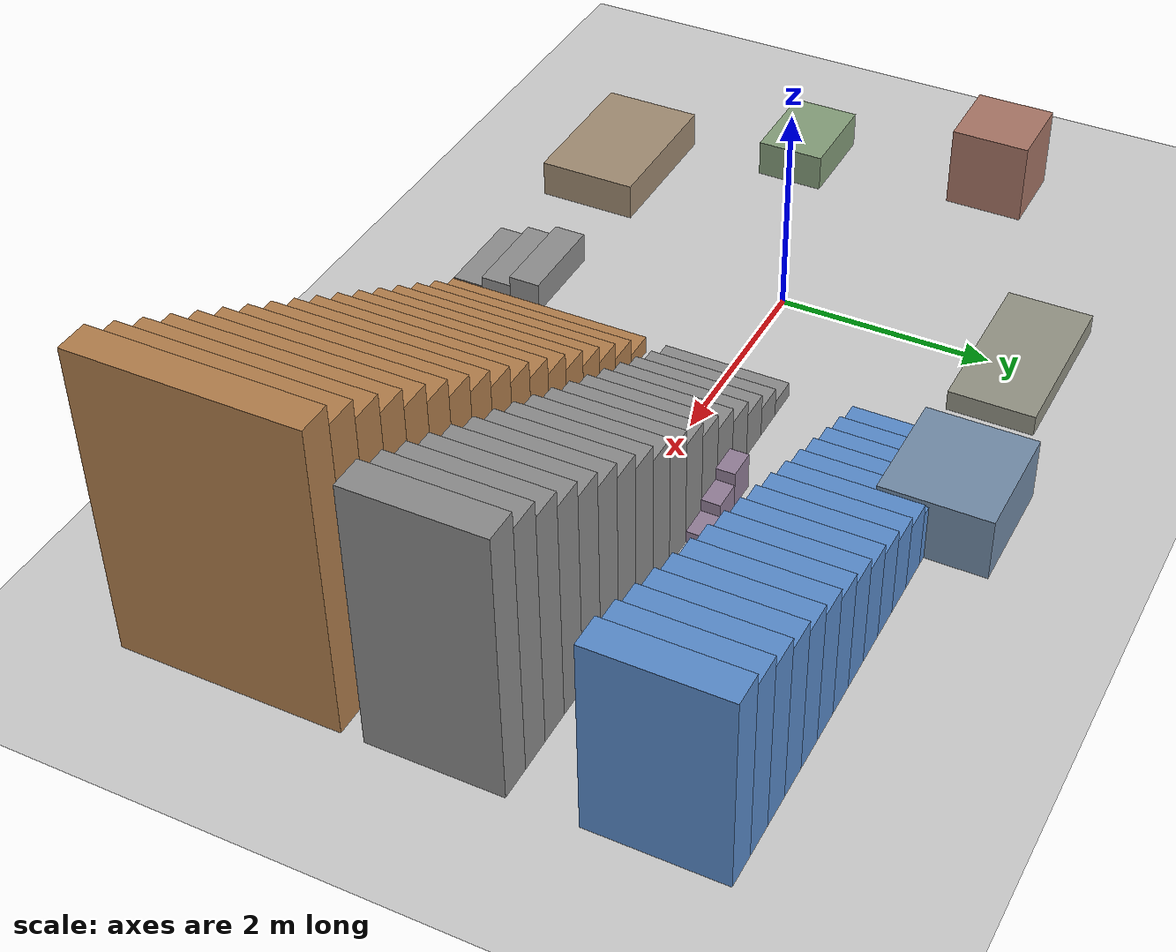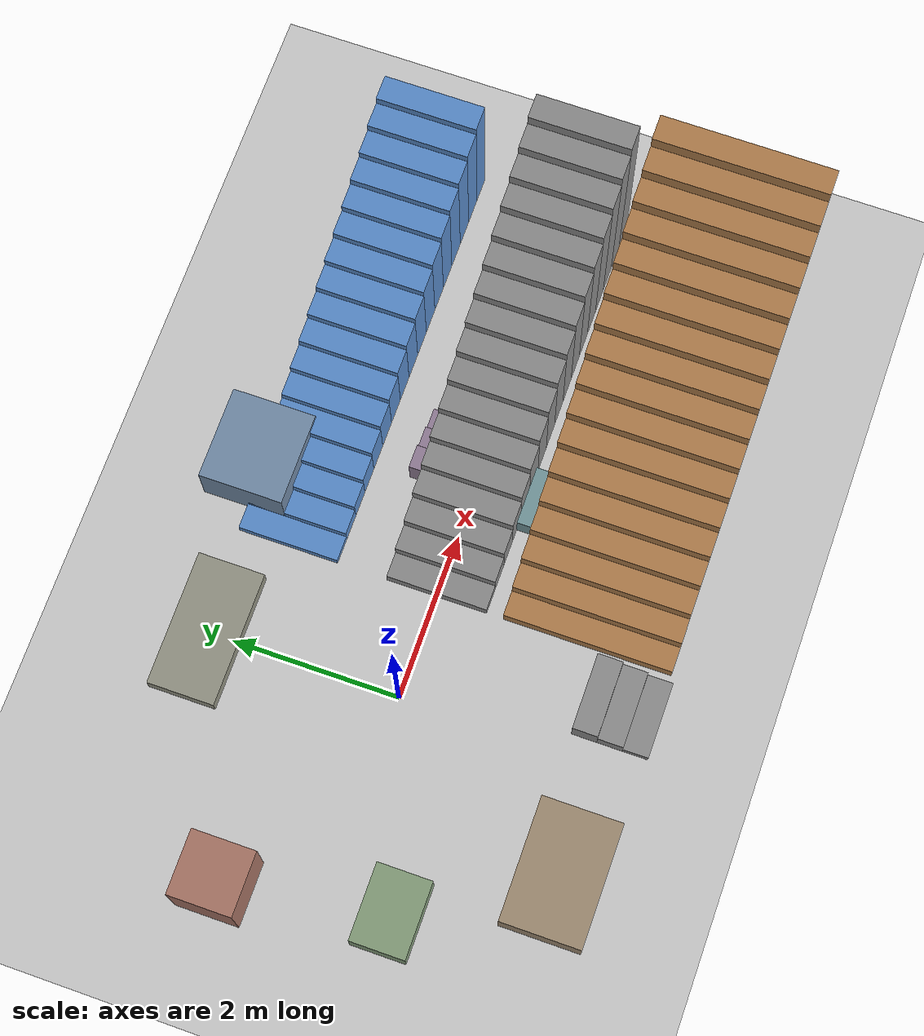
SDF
<?xml version="1.0" ?>

<sdf version="1.5">
    <world name="default">
        <!-- Target real time factor is the product of max_step_size and real_time_update_rate -->
        <!-- Negative real_time_update_rate means that Gazebo will run as fast as possible -->
        <physics type="ode">
            <type>world</type>
            <max_step_size>0.001</max_step_size>
            <real_time_update_rate>1000</real_time_update_rate>
            <iters>50</iters>
            <max_contacts>20</max_contacts>
        </physics>
        <!-- A global light source -->
        <include>
            <uri>model://sun</uri>
        </include>
        <!-- A ground plane -->
        <include>
            <uri>model://ground_plane</uri>
        </include>
        <!-- Static stair obstacle in front of the robot spawn pose. -->
        <model name="stairs">
            <static>true</static>
            <pose>1.40 0 0 0 0 0</pose>
            <link name="step_1">
                <pose>0.00 0 0.075 0 0 0</pose>
                <collision name="collision">
                    <geometry>
                        <box>
                            <size>0.30 1.20 0.15</size>
                        </box>
                    </geometry>
                </collision>
                <visual name="visual">
                    <geometry>
                        <box>
                            <size>0.30 1.20 0.15</size>
                        </box>
                    </geometry>
                    <material>
                        <ambient>0.45 0.45 0.45 1</ambient>
                        <diffuse>0.55 0.55 0.55 1</diffuse>
                    </material>
                </visual>
            </link>
            <link name="step_2">
                <pose>0.30 0 0.150 0 0 0</pose>
                <collision name="collision">
                    <geometry>
                        <box>
                            <size>0.30 1.20 0.30</size>
                        </box>
                    </geometry>
                </collision>
                <visual name="visual">
                    <geometry>
                        <box>
                            <size>0.30 1.20 0.30</size>
                        </box>
                    </geometry>
                    <material>
                        <ambient>0.45 0.45 0.45 1</ambient>
                        <diffuse>0.55 0.55 0.55 1</diffuse>
                    </material>
                </visual>
            </link>
            <link name="step_3">
                <pose>0.60 0 0.225 0 0 0</pose>
                <collision name="collision">
                    <geometry>
                        <box>
                            <size>0.30 1.20 0.45</size>
                        </box>
                    </geometry>
                </collision>
                <visual name="visual">
                    <geometry>
                        <box>
                            <size>0.30 1.20 0.45</size>
                        </box>
                    </geometry>
                    <material>
                        <ambient>0.45 0.45 0.45 1</ambient>
                        <diffuse>0.55 0.55 0.55 1</diffuse>
                    </material>
                </visual>
            </link>
            <link name="step_4">
                <pose>0.90 0 0.300 0 0 0</pose>
                <collision name="collision">
                    <geometry>
                        <box>
                            <size>0.30 1.20 0.60</size>
                        </box>
                    </geometry>
                </collision>
                <visual name="visual">
                    <geometry>
                        <box>
                            <size>0.30 1.20 0.60</size>
                        </box>
                    </geometry>
                    <material>
                        <ambient>0.45 0.45 0.45 1</ambient>
                        <diffuse>0.55 0.55 0.55 1</diffuse>
                    </material>
                </visual>
            </link>
            <link name="step_5">
                <pose>1.20 0 0.375 0 0 0</pose>
                <collision name="collision">
                    <geometry>
                        <box>
                            <size>0.30 1.20 0.75</size>
                        </box>
                    </geometry>
                </collision>
                <visual name="visual">
                    <geometry>
                        <box>
                            <size>0.30 1.20 0.75</size>
                        </box>
                    </geometry>
                    <material>
                        <ambient>0.45 0.45 0.45 1</ambient>
                        <diffuse>0.55 0.55 0.55 1</diffuse>
                    </material>
                </visual>
            </link>
            <link name="step_6">
                <pose>1.50 0 0.450 0 0 0</pose>
                <collision name="collision">
                    <geometry>
                        <box>
                            <size>0.30 1.20 0.90</size>
                        </box>
                    </geometry>
                </collision>
                <visual name="visual">
                    <geometry>
                        <box>
                            <size>0.30 1.20 0.90</size>
                        </box>
                    </geometry>
                    <material>
                        <ambient>0.45 0.45 0.45 1</ambient>
                        <diffuse>0.55 0.55 0.55 1</diffuse>
                    </material>
                </visual>
            </link>
            <link name="step_7">
                <pose>1.80 0 0.525 0 0 0</pose>
                <collision name="collision">
                    <geometry>
                        <box>
                            <size>0.30 1.20 1.05</size>
                        </box>
                    </geometry>
                </collision>
                <visual name="visual">
                    <geometry>
                        <box>
                            <size>0.30 1.20 1.05</size>
                        </box>
                    </geometry>
                    <material>
                        <ambient>0.45 0.45 0.45 1</ambient>
                        <diffuse>0.55 0.55 0.55 1</diffuse>
                    </material>
                </visual>
            </link>
            <link name="step_8">
                <pose>2.10 0 0.600 0 0 0</pose>
                <collision name="collision">
                    <geometry>
                        <box>
                            <size>0.30 1.20 1.20</size>
                        </box>
                    </geometry>
                </collision>
                <visual name="visual">
                    <geometry>
                        <box>
                            <size>0.30 1.20 1.20</size>
                        </box>
                    </geometry>
                    <material>
                        <ambient>0.45 0.45 0.45 1</ambient>
                        <diffuse>0.55 0.55 0.55 1</diffuse>
                    </material>
                </visual>
            </link>
            <link name="step_9">
                <pose>2.40 0 0.675 0 0 0</pose>
                <collision name="collision">
                    <geometry>
                        <box>
                            <size>0.30 1.20 1.35</size>
                        </box>
                    </geometry>
                </collision>
                <visual name="visual">
                    <geometry>
                        <box>
                            <size>0.30 1.20 1.35</size>
                        </box>
                    </geometry>
                    <material>
                        <ambient>0.45 0.45 0.45 1</ambient>
                        <diffuse>0.55 0.55 0.55 1</diffuse>
                    </material>
                </visual>
            </link>
            <link name="step_10">
                <pose>2.70 0 0.750 0 0 0</pose>
                <collision name="collision">
                    <geometry>
                        <box>
                            <size>0.30 1.20 1.50</size>
                        </box>
                    </geometry>
                </collision>
                <visual name="visual">
                    <geometry>
                        <box>
                            <size>0.30 1.20 1.50</size>
                        </box>
                    </geometry>
                    <material>
                        <ambient>0.45 0.45 0.45 1</ambient>
                        <diffuse>0.55 0.55 0.55 1</diffuse>
                    </material>
                </visual>
            </link>
            <link name="step_11">
                <pose>3.00 0 0.825 0 0 0</pose>
                <collision name="collision">
                    <geometry>
                        <box>
                            <size>0.30 1.20 1.65</size>
                        </box>
                    </geometry>
                </collision>
                <visual name="visual">
                    <geometry>
                        <box>
                            <size>0.30 1.20 1.65</size>
                        </box>
                    </geometry>
                    <material>
                        <ambient>0.45 0.45 0.45 1</ambient>
                        <diffuse>0.55 0.55 0.55 1</diffuse>
                    </material>
                </visual>
            </link>
            <link name="step_12">
                <pose>3.30 0 0.900 0 0 0</pose>
                <collision name="collision">
                    <geometry>
                        <box>
                            <size>0.30 1.20 1.80</size>
                        </box>
                    </geometry>
                </collision>
                <visual name="visual">
                    <geometry>
                        <box>
                            <size>0.30 1.20 1.80</size>
                        </box>
                    </geometry>
                    <material>
                        <ambient>0.45 0.45 0.45 1</ambient>
                        <diffuse>0.55 0.55 0.55 1</diffuse>
                    </material>
                </visual>
            </link>
            <link name="step_13">
                <pose>3.60 0 0.975 0 0 0</pose>
                <collision name="collision">
                    <geometry>
                        <box>
                            <size>0.30 1.20 1.95</size>
                        </box>
                    </geometry>
                </collision>
                <visual name="visual">
                    <geometry>
                        <box>
                            <size>0.30 1.20 1.95</size>
                        </box>
                    </geometry>
                    <material>
                        <ambient>0.45 0.45 0.45 1</ambient>
                        <diffuse>0.55 0.55 0.55 1</diffuse>
                    </material>
                </visual>
            </link>
            <link name="step_14">
                <pose>3.90 0 1.050 0 0 0</pose>
                <collision name="collision">
                    <geometry>
                        <box>
                            <size>0.30 1.20 2.10</size>
                        </box>
                    </geometry>
                </collision>
                <visual name="visual">
                    <geometry>
                        <box>
                            <size>0.30 1.20 2.10</size>
                        </box>
                    </geometry>
                    <material>
                        <ambient>0.45 0.45 0.45 1</ambient>
                        <diffuse>0.55 0.55 0.55 1</diffuse>
                    </material>
                </visual>
            </link>
            <link name="step_15">
                <pose>4.20 0 1.125 0 0 0</pose>
                <collision name="collision">
                    <geometry>
                        <box>
                            <size>0.30 1.20 2.25</size>
                        </box>
                    </geometry>
                </collision>
                <visual name="visual">
                    <geometry>
                        <box>
                            <size>0.30 1.20 2.25</size>
                        </box>
                    </geometry>
                    <material>
                        <ambient>0.45 0.45 0.45 1</ambient>
                        <diffuse>0.55 0.55 0.55 1</diffuse>
                    </material>
                </visual>
            </link>
            <link name="step_16">
                <pose>4.50 0 1.200 0 0 0</pose>
                <collision name="collision">
                    <geometry>
                        <box>
                            <size>0.30 1.20 2.40</size>
                        </box>
                    </geometry>
                </collision>
                <visual name="visual">
                    <geometry>
                        <box>
                            <size>0.30 1.20 2.40</size>
                        </box>
                    </geometry>
                    <material>
                        <ambient>0.45 0.45 0.45 1</ambient>
                        <diffuse>0.55 0.55 0.55 1</diffuse>
                    </material>
                </visual>
            </link>
            <link name="step_17">
                <pose>4.80 0 1.275 0 0 0</pose>
                <collision name="collision">
                    <geometry>
                        <box>
                            <size>0.30 1.20 2.55</size>
                        </box>
                    </geometry>
                </collision>
                <visual name="visual">
                    <geometry>
                        <box>
                            <size>0.30 1.20 2.55</size>
                        </box>
                    </geometry>
                    <material>
                        <ambient>0.45 0.45 0.45 1</ambient>
                        <diffuse>0.55 0.55 0.55 1</diffuse>
                    </material>
                </visual>
            </link>
        </model>
        <!-- Parallel 20-degree staircase: 0.30 m tread, tan(20 deg) rise. -->
        <model name="stairs_20deg">
            <static>true</static>
            <pose>1.40 1.80 0 0 0 0</pose>
            <link name="step_1">
                <pose>0.00 0 0.054596 0 0 0</pose>
                <collision name="collision">
                    <geometry>
                        <box>
                            <size>0.30 1.20 0.109191</size>
                        </box>
                    </geometry>
                </collision>
                <visual name="visual">
                    <geometry>
                        <box>
                            <size>0.30 1.20 0.109191</size>
                        </box>
                    </geometry>
                    <material>
                        <ambient>0.30 0.45 0.65 1</ambient>
                        <diffuse>0.35 0.55 0.80 1</diffuse>
                    </material>
                </visual>
            </link>
            <link name="step_2">
                <pose>0.30 0 0.109191 0 0 0</pose>
                <collision name="collision">
                    <geometry>
                        <box>
                            <size>0.30 1.20 0.218382</size>
                        </box>
                    </geometry>
                </collision>
                <visual name="visual">
                    <geometry>
                        <box>
                            <size>0.30 1.20 0.218382</size>
                        </box>
                    </geometry>
                    <material>
                        <ambient>0.30 0.45 0.65 1</ambient>
                        <diffuse>0.35 0.55 0.80 1</diffuse>
                    </material>
                </visual>
            </link>
            <link name="step_3">
                <pose>0.60 0 0.163787 0 0 0</pose>
                <collision name="collision">
                    <geometry>
                        <box>
                            <size>0.30 1.20 0.327573</size>
                        </box>
                    </geometry>
                </collision>
                <visual name="visual">
                    <geometry>
                        <box>
                            <size>0.30 1.20 0.327573</size>
                        </box>
                    </geometry>
                    <material>
                        <ambient>0.30 0.45 0.65 1</ambient>
                        <diffuse>0.35 0.55 0.80 1</diffuse>
                    </material>
                </visual>
            </link>
            <link name="step_4">
                <pose>0.90 0 0.218382 0 0 0</pose>
                <collision name="collision">
                    <geometry>
                        <box>
                            <size>0.30 1.20 0.436764</size>
                        </box>
                    </geometry>
                </collision>
                <visual name="visual">
                    <geometry>
                        <box>
                            <size>0.30 1.20 0.436764</size>
                        </box>
                    </geometry>
                    <material>
                        <ambient>0.30 0.45 0.65 1</ambient>
                        <diffuse>0.35 0.55 0.80 1</diffuse>
                    </material>
                </visual>
            </link>
            <link name="step_5">
                <pose>1.20 0 0.272978 0 0 0</pose>
                <collision name="collision">
                    <geometry>
                        <box>
                            <size>0.30 1.20 0.545955</size>
                        </box>
                    </geometry>
                </collision>
                <visual name="visual">
                    <geometry>
                        <box>
                            <size>0.30 1.20 0.545955</size>
                        </box>
                    </geometry>
                    <material>
                        <ambient>0.30 0.45 0.65 1</ambient>
                        <diffuse>0.35 0.55 0.80 1</diffuse>
                    </material>
                </visual>
            </link>
            <link name="step_6">
                <pose>1.50 0 0.327573 0 0 0</pose>
                <collision name="collision">
                    <geometry>
                        <box>
                            <size>0.30 1.20 0.655146</size>
                        </box>
                    </geometry>
                </collision>
                <visual name="visual">
                    <geometry>
                        <box>
                            <size>0.30 1.20 0.655146</size>
                        </box>
                    </geometry>
                    <material>
                        <ambient>0.30 0.45 0.65 1</ambient>
                        <diffuse>0.35 0.55 0.80 1</diffuse>
                    </material>
                </visual>
            </link>
            <link name="step_7">
                <pose>1.80 0 0.382169 0 0 0</pose>
                <collision name="collision">
                    <geometry>
                        <box>
                            <size>0.30 1.20 0.764337</size>
                        </box>
                    </geometry>
                </collision>
                <visual name="visual">
                    <geometry>
                        <box>
                            <size>0.30 1.20 0.764337</size>
                        </box>
                    </geometry>
                    <material>
                        <ambient>0.30 0.45 0.65 1</ambient>
                        <diffuse>0.35 0.55 0.80 1</diffuse>
                    </material>
                </visual>
            </link>
            <link name="step_8">
                <pose>2.10 0 0.436764 0 0 0</pose>
                <collision name="collision">
                    <geometry>
                        <box>
                            <size>0.30 1.20 0.873529</size>
                        </box>
                    </geometry>
                </collision>
                <visual name="visual">
                    <geometry>
                        <box>
                            <size>0.30 1.20 0.873529</size>
                        </box>
                    </geometry>
                    <material>
                        <ambient>0.30 0.45 0.65 1</ambient>
                        <diffuse>0.35 0.55 0.80 1</diffuse>
                    </material>
                </visual>
            </link>
            <link name="step_9">
                <pose>2.40 0 0.491360 0 0 0</pose>
                <collision name="collision">
                    <geometry>
                        <box>
                            <size>0.30 1.20 0.982720</size>
                        </box>
                    </geometry>
                </collision>
                <visual name="visual">
                    <geometry>
                        <box>
                            <size>0.30 1.20 0.982720</size>
                        </box>
                    </geometry>
                    <material>
                        <ambient>0.30 0.45 0.65 1</ambient>
                        <diffuse>0.35 0.55 0.80 1</diffuse>
                    </material>
                </visual>
            </link>
            <link name="step_10">
                <pose>2.70 0 0.545955 0 0 0</pose>
                <collision name="collision">
                    <geometry>
                        <box>
                            <size>0.30 1.20 1.091911</size>
                        </box>
                    </geometry>
                </collision>
                <visual name="visual">
                    <geometry>
                        <box>
                            <size>0.30 1.20 1.091911</size>
                        </box>
                    </geometry>
                    <material>
                        <ambient>0.30 0.45 0.65 1</ambient>
                        <diffuse>0.35 0.55 0.80 1</diffuse>
                    </material>
                </visual>
            </link>
            <link name="step_11">
                <pose>3.00 0 0.600551 0 0 0</pose>
                <collision name="collision">
                    <geometry>
                        <box>
                            <size>0.30 1.20 1.201102</size>
                        </box>
                    </geometry>
                </collision>
                <visual name="visual">
                    <geometry>
                        <box>
                            <size>0.30 1.20 1.201102</size>
                        </box>
                    </geometry>
                    <material>
                        <ambient>0.30 0.45 0.65 1</ambient>
                        <diffuse>0.35 0.55 0.80 1</diffuse>
                    </material>
                </visual>
            </link>
            <link name="step_12">
                <pose>3.30 0 0.655146 0 0 0</pose>
                <collision name="collision">
                    <geometry>
                        <box>
                            <size>0.30 1.20 1.310293</size>
                        </box>
                    </geometry>
                </collision>
                <visual name="visual">
                    <geometry>
                        <box>
                            <size>0.30 1.20 1.310293</size>
                        </box>
                    </geometry>
                    <material>
                        <ambient>0.30 0.45 0.65 1</ambient>
                        <diffuse>0.35 0.55 0.80 1</diffuse>
                    </material>
                </visual>
            </link>
            <link name="step_13">
                <pose>3.60 0 0.709742 0 0 0</pose>
                <collision name="collision">
                    <geometry>
                        <box>
                            <size>0.30 1.20 1.419484</size>
                        </box>
                    </geometry>
                </collision>
                <visual name="visual">
                    <geometry>
                        <box>
                            <size>0.30 1.20 1.419484</size>
                        </box>
                    </geometry>
                    <material>
                        <ambient>0.30 0.45 0.65 1</ambient>
                        <diffuse>0.35 0.55 0.80 1</diffuse>
                    </material>
                </visual>
            </link>
            <link name="step_14">
                <pose>3.90 0 0.764337 0 0 0</pose>
                <collision name="collision">
                    <geometry>
                        <box>
                            <size>0.30 1.20 1.528675</size>
                        </box>
                    </geometry>
                </collision>
                <visual name="visual">
                    <geometry>
                        <box>
                            <size>0.30 1.20 1.528675</size>
                        </box>
                    </geometry>
                    <material>
                        <ambient>0.30 0.45 0.65 1</ambient>
                        <diffuse>0.35 0.55 0.80 1</diffuse>
                    </material>
                </visual>
            </link>
            <link name="step_15">
                <pose>4.20 0 0.818933 0 0 0</pose>
                <collision name="collision">
                    <geometry>
                        <box>
                            <size>0.30 1.20 1.637866</size>
                        </box>
                    </geometry>
                </collision>
                <visual name="visual">
                    <geometry>
                        <box>
                            <size>0.30 1.20 1.637866</size>
                        </box>
                    </geometry>
                    <material>
                        <ambient>0.30 0.45 0.65 1</ambient>
                        <diffuse>0.35 0.55 0.80 1</diffuse>
                    </material>
                </visual>
            </link>
            <link name="step_16">
                <pose>4.50 0 0.873529 0 0 0</pose>
                <collision name="collision">
                    <geometry>
                        <box>
                            <size>0.30 1.20 1.747057</size>
                        </box>
                    </geometry>
                </collision>
                <visual name="visual">
                    <geometry>
                        <box>
                            <size>0.30 1.20 1.747057</size>
                        </box>
                    </geometry>
                    <material>
                        <ambient>0.30 0.45 0.65 1</ambient>
                        <diffuse>0.35 0.55 0.80 1</diffuse>
                    </material>
                </visual>
            </link>
            <link name="step_17">
                <pose>4.80 0 0.928124 0 0 0</pose>
                <collision name="collision">
                    <geometry>
                        <box>
                            <size>0.30 1.20 1.856248</size>
                        </box>
                    </geometry>
                </collision>
                <visual name="visual">
                    <geometry>
                        <box>
                            <size>0.30 1.20 1.856248</size>
                        </box>
                    </geometry>
                    <material>
                        <ambient>0.30 0.45 0.65 1</ambient>
                        <diffuse>0.35 0.55 0.80 1</diffuse>
                    </material>
                </visual>
            </link>
        </model>
        <!-- Parallel 30-degree staircase: 0.30 m tread, tan(30 deg) rise, 2.00 m wide. -->
        <model name="stairs_30deg">
            <static>true</static>
            <pose>1.40 -1.80 0 0 0 0</pose>
            <link name="step_1">
                <pose>0.00 0 0.086603 0 0 0</pose>
                <collision name="collision">
                    <geometry>
                        <box>
                            <size>0.30 2.00 0.173205</size>
                        </box>
                    </geometry>
                </collision>
                <visual name="visual">
                    <geometry>
                        <box>
                            <size>0.30 2.00 0.173205</size>
                        </box>
                    </geometry>
                    <material>
                        <ambient>0.55 0.40 0.25 1</ambient>
                        <diffuse>0.70 0.50 0.30 1</diffuse>
                    </material>
                </visual>
            </link>
            <link name="step_2">
                <pose>0.30 0 0.173205 0 0 0</pose>
                <collision name="collision">
                    <geometry>
                        <box>
                            <size>0.30 2.00 0.346410</size>
                        </box>
                    </geometry>
                </collision>
                <visual name="visual">
                    <geometry>
                        <box>
                            <size>0.30 2.00 0.346410</size>
                        </box>
                    </geometry>
                    <material>
                        <ambient>0.55 0.40 0.25 1</ambient>
                        <diffuse>0.70 0.50 0.30 1</diffuse>
                    </material>
                </visual>
            </link>
            <link name="step_3">
                <pose>0.60 0 0.259808 0 0 0</pose>
                <collision name="collision">
                    <geometry>
                        <box>
                            <size>0.30 2.00 0.519615</size>
                        </box>
                    </geometry>
                </collision>
                <visual name="visual">
                    <geometry>
                        <box>
                            <size>0.30 2.00 0.519615</size>
                        </box>
                    </geometry>
                    <material>
                        <ambient>0.55 0.40 0.25 1</ambient>
                        <diffuse>0.70 0.50 0.30 1</diffuse>
                    </material>
                </visual>
            </link>
            <link name="step_4">
                <pose>0.90 0 0.346410 0 0 0</pose>
                <collision name="collision">
                    <geometry>
                        <box>
                            <size>0.30 2.00 0.692820</size>
                        </box>
                    </geometry>
                </collision>
                <visual name="visual">
                    <geometry>
                        <box>
                            <size>0.30 2.00 0.692820</size>
                        </box>
                    </geometry>
                    <material>
                        <ambient>0.55 0.40 0.25 1</ambient>
                        <diffuse>0.70 0.50 0.30 1</diffuse>
                    </material>
                </visual>
            </link>
            <link name="step_5">
                <pose>1.20 0 0.433013 0 0 0</pose>
                <collision name="collision">
                    <geometry>
                        <box>
                            <size>0.30 2.00 0.866025</size>
                        </box>
                    </geometry>
                </collision>
                <visual name="visual">
                    <geometry>
                        <box>
                            <size>0.30 2.00 0.866025</size>
                        </box>
                    </geometry>
                    <material>
                        <ambient>0.55 0.40 0.25 1</ambient>
                        <diffuse>0.70 0.50 0.30 1</diffuse>
                    </material>
                </visual>
            </link>
            <link name="step_6">
                <pose>1.50 0 0.519615 0 0 0</pose>
                <collision name="collision">
                    <geometry>
                        <box>
                            <size>0.30 2.00 1.039230</size>
                        </box>
                    </geometry>
                </collision>
                <visual name="visual">
                    <geometry>
                        <box>
                            <size>0.30 2.00 1.039230</size>
                        </box>
                    </geometry>
                    <material>
                        <ambient>0.55 0.40 0.25 1</ambient>
                        <diffuse>0.70 0.50 0.30 1</diffuse>
                    </material>
                </visual>
            </link>
            <link name="step_7">
                <pose>1.80 0 0.606218 0 0 0</pose>
                <collision name="collision">
                    <geometry>
                        <box>
                            <size>0.30 2.00 1.212436</size>
                        </box>
                    </geometry>
                </collision>
                <visual name="visual">
                    <geometry>
                        <box>
                            <size>0.30 2.00 1.212436</size>
                        </box>
                    </geometry>
                    <material>
                        <ambient>0.55 0.40 0.25 1</ambient>
                        <diffuse>0.70 0.50 0.30 1</diffuse>
                    </material>
                </visual>
            </link>
            <link name="step_8">
                <pose>2.10 0 0.692820 0 0 0</pose>
                <collision name="collision">
                    <geometry>
                        <box>
                            <size>0.30 2.00 1.385641</size>
                        </box>
                    </geometry>
                </collision>
                <visual name="visual">
                    <geometry>
                        <box>
                            <size>0.30 2.00 1.385641</size>
                        </box>
                    </geometry>
                    <material>
                        <ambient>0.55 0.40 0.25 1</ambient>
                        <diffuse>0.70 0.50 0.30 1</diffuse>
                    </material>
                </visual>
            </link>
            <link name="step_9">
                <pose>2.40 0 0.779423 0 0 0</pose>
                <collision name="collision">
                    <geometry>
                        <box>
                            <size>0.30 2.00 1.558846</size>
                        </box>
                    </geometry>
                </collision>
                <visual name="visual">
                    <geometry>
                        <box>
                            <size>0.30 2.00 1.558846</size>
                        </box>
                    </geometry>
                    <material>
                        <ambient>0.55 0.40 0.25 1</ambient>
                        <diffuse>0.70 0.50 0.30 1</diffuse>
                    </material>
                </visual>
            </link>
            <link name="step_10">
                <pose>2.70 0 0.866025 0 0 0</pose>
                <collision name="collision">
                    <geometry>
                        <box>
                            <size>0.30 2.00 1.732051</size>
                        </box>
                    </geometry>
                </collision>
                <visual name="visual">
                    <geometry>
                        <box>
                            <size>0.30 2.00 1.732051</size>
                        </box>
                    </geometry>
                    <material>
                        <ambient>0.55 0.40 0.25 1</ambient>
                        <diffuse>0.70 0.50 0.30 1</diffuse>
                    </material>
                </visual>
            </link>
            <link name="step_11">
                <pose>3.00 0 0.952628 0 0 0</pose>
                <collision name="collision">
                    <geometry>
                        <box>
                            <size>0.30 2.00 1.905256</size>
                        </box>
                    </geometry>
                </collision>
                <visual name="visual">
                    <geometry>
                        <box>
                            <size>0.30 2.00 1.905256</size>
                        </box>
                    </geometry>
                    <material>
                        <ambient>0.55 0.40 0.25 1</ambient>
                        <diffuse>0.70 0.50 0.30 1</diffuse>
                    </material>
                </visual>
            </link>
            <link name="step_12">
                <pose>3.30 0 1.039230 0 0 0</pose>
                <collision name="collision">
                    <geometry>
                        <box>
                            <size>0.30 2.00 2.078461</size>
                        </box>
                    </geometry>
                </collision>
                <visual name="visual">
                    <geometry>
                        <box>
                            <size>0.30 2.00 2.078461</size>
                        </box>
                    </geometry>
                    <material>
                        <ambient>0.55 0.40 0.25 1</ambient>
                        <diffuse>0.70 0.50 0.30 1</diffuse>
                    </material>
                </visual>
            </link>
            <link name="step_13">
                <pose>3.60 0 1.125833 0 0 0</pose>
                <collision name="collision">
                    <geometry>
                        <box>
                            <size>0.30 2.00 2.251666</size>
                        </box>
                    </geometry>
                </collision>
                <visual name="visual">
                    <geometry>
                        <box>
                            <size>0.30 2.00 2.251666</size>
                        </box>
                    </geometry>
                    <material>
                        <ambient>0.55 0.40 0.25 1</ambient>
                        <diffuse>0.70 0.50 0.30 1</diffuse>
                    </material>
                </visual>
            </link>
            <link name="step_14">
                <pose>3.90 0 1.212436 0 0 0</pose>
                <collision name="collision">
                    <geometry>
                        <box>
                            <size>0.30 2.00 2.424871</size>
                        </box>
                    </geometry>
                </collision>
                <visual name="visual">
                    <geometry>
                        <box>
                            <size>0.30 2.00 2.424871</size>
                        </box>
                    </geometry>
                    <material>
                        <ambient>0.55 0.40 0.25 1</ambient>
                        <diffuse>0.70 0.50 0.30 1</diffuse>
                    </material>
                </visual>
            </link>
            <link name="step_15">
                <pose>4.20 0 1.299038 0 0 0</pose>
                <collision name="collision">
                    <geometry>
                        <box>
                            <size>0.30 2.00 2.598076</size>
                        </box>
                    </geometry>
                </collision>
                <visual name="visual">
                    <geometry>
                        <box>
                            <size>0.30 2.00 2.598076</size>
                        </box>
                    </geometry>
                    <material>
                        <ambient>0.55 0.40 0.25 1</ambient>
                        <diffuse>0.70 0.50 0.30 1</diffuse>
                    </material>
                </visual>
            </link>
            <link name="step_16">
                <pose>4.50 0 1.385641 0 0 0</pose>
                <collision name="collision">
                    <geometry>
                        <box>
                            <size>0.30 2.00 2.771281</size>
                        </box>
                    </geometry>
                </collision>
                <visual name="visual">
                    <geometry>
                        <box>
                            <size>0.30 2.00 2.771281</size>
                        </box>
                    </geometry>
                    <material>
                        <ambient>0.55 0.40 0.25 1</ambient>
                        <diffuse>0.70 0.50 0.30 1</diffuse>
                    </material>
                </visual>
            </link>
            <link name="step_17">
                <pose>4.80 0 1.472243 0 0 0</pose>
                <collision name="collision">
                    <geometry>
                        <box>
                            <size>0.30 2.00 2.944486</size>
                        </box>
                    </geometry>
                </collision>
                <visual name="visual">
                    <geometry>
                        <box>
                            <size>0.30 2.00 2.944486</size>
                        </box>
                    </geometry>
                    <material>
                        <ambient>0.55 0.40 0.25 1</ambient>
                        <diffuse>0.70 0.50 0.30 1</diffuse>
                    </material>
                </visual>
            </link>
        </model>

        <!-- Obstacle ring around the robot spawn area for lidar and elevation-map simulation. -->
        <model name="spawn_obstacle_ring">
            <static>true</static>
            <pose>0 0 0 0 0 0</pose>

            <link name="north_low_platform">
                <pose>0.00 2.30 0.10 0 0 0</pose>
                <collision name="collision"><geometry><box><size>1.60 0.80 0.20</size></box></geometry></collision>
                <visual name="visual">
                    <geometry><box><size>1.60 0.80 0.20</size></box></geometry>
                    <material><ambient>0.42 0.42 0.38 1</ambient><diffuse>0.58 0.58 0.52 1</diffuse></material>
                </visual>
            </link>

            <link name="north_high_platform">
                <pose>2.10 2.45 0.30 0 0 0</pose>
                <collision name="collision"><geometry><box><size>1.10 1.00 0.60</size></box></geometry></collision>
                <visual name="visual">
                    <geometry><box><size>1.10 1.00 0.60</size></box></geometry>
                    <material><ambient>0.35 0.42 0.50 1</ambient><diffuse>0.45 0.55 0.66 1</diffuse></material>
                </visual>
            </link>

            <link name="west_high_block">
                <pose>-2.60 1.15 0.40 0 0 0</pose>
                <collision name="collision"><geometry><box><size>0.75 0.75 0.80</size></box></geometry></collision>
                <visual name="visual">
                    <geometry><box><size>0.75 0.75 0.80</size></box></geometry>
                    <material><ambient>0.50 0.36 0.32 1</ambient><diffuse>0.66 0.46 0.40 1</diffuse></material>
                </visual>
            </link>

            <link name="west_low_block">
                <pose>-2.30 -0.75 0.18 0 0 0</pose>
                <collision name="collision"><geometry><box><size>0.90 0.65 0.36</size></box></geometry></collision>
                <visual name="visual">
                    <geometry><box><size>0.90 0.65 0.36</size></box></geometry>
                    <material><ambient>0.40 0.46 0.36 1</ambient><diffuse>0.52 0.62 0.48 1</diffuse></material>
                </visual>
            </link>

            <link name="south_platform">
                <pose>-1.30 -2.35 0.18 0 0 0</pose>
                <collision name="collision"><geometry><box><size>1.45 0.95 0.36</size></box></geometry></collision>
                <visual name="visual">
                    <geometry><box><size>1.45 0.95 0.36</size></box></geometry>
                    <material><ambient>0.48 0.43 0.36 1</ambient><diffuse>0.63 0.55 0.45 1</diffuse></material>
                </visual>
            </link>

            <link name="south_step_1">
                <pose>0.70 -2.70 0.05 0 0 0</pose>
                <collision name="collision"><geometry><box><size>0.90 0.30 0.10</size></box></geometry></collision>
                <visual name="visual">
                    <geometry><box><size>0.90 0.30 0.10</size></box></geometry>
                    <material><ambient>0.44 0.44 0.44 1</ambient><diffuse>0.56 0.56 0.56 1</diffuse></material>
                </visual>
            </link>

            <link name="south_step_2">
                <pose>0.70 -2.40 0.10 0 0 0</pose>
                <collision name="collision"><geometry><box><size>0.90 0.30 0.20</size></box></geometry></collision>
                <visual name="visual">
                    <geometry><box><size>0.90 0.30 0.20</size></box></geometry>
                    <material><ambient>0.44 0.44 0.44 1</ambient><diffuse>0.56 0.56 0.56 1</diffuse></material>
                </visual>
            </link>

            <link name="south_step_3">
                <pose>0.70 -2.10 0.15 0 0 0</pose>
                <collision name="collision"><geometry><box><size>0.90 0.30 0.30</size></box></geometry></collision>
                <visual name="visual">
                    <geometry><box><size>0.90 0.30 0.30</size></box></geometry>
                    <material><ambient>0.44 0.44 0.44 1</ambient><diffuse>0.56 0.56 0.56 1</diffuse></material>
                </visual>
            </link>

            <link name="east_narrow_platform">
                <pose>2.65 -1.05 0.14 0 0 0</pose>
                <collision name="collision"><geometry><box><size>0.70 1.50 0.28</size></box></geometry></collision>
                <visual name="visual">
                    <geometry><box><size>0.70 1.50 0.28</size></box></geometry>
                    <material><ambient>0.36 0.46 0.48 1</ambient><diffuse>0.46 0.60 0.62 1</diffuse></material>
                </visual>
            </link>

            <link name="east_step_1">
                <pose>3.20 0.35 0.06 0 0 1.5708</pose>
                <collision name="collision"><geometry><box><size>0.85 0.28 0.12</size></box></geometry></collision>
                <visual name="visual">
                    <geometry><box><size>0.85 0.28 0.12</size></box></geometry>
                    <material><ambient>0.46 0.40 0.46 1</ambient><diffuse>0.58 0.50 0.60 1</diffuse></material>
                </visual>
            </link>

            <link name="east_step_2">
                <pose>2.92 0.35 0.12 0 0 1.5708</pose>
                <collision name="collision"><geometry><box><size>0.85 0.28 0.24</size></box></geometry></collision>
                <visual name="visual">
                    <geometry><box><size>0.85 0.28 0.24</size></box></geometry>
                    <material><ambient>0.46 0.40 0.46 1</ambient><diffuse>0.58 0.50 0.60 1</diffuse></material>
                </visual>
            </link>

            <link name="east_step_3">
                <pose>2.64 0.35 0.18 0 0 1.5708</pose>
                <collision name="collision"><geometry><box><size>0.85 0.28 0.36</size></box></geometry></collision>
                <visual name="visual">
                    <geometry><box><size>0.85 0.28 0.36</size></box></geometry>
                    <material><ambient>0.46 0.40 0.46 1</ambient><diffuse>0.58 0.50 0.60 1</diffuse></material>
                </visual>
            </link>
        </model>

    </world>
</sdf>
